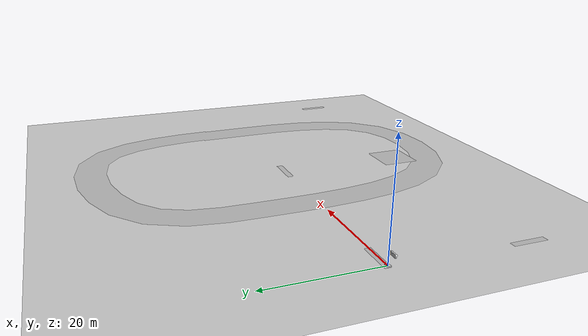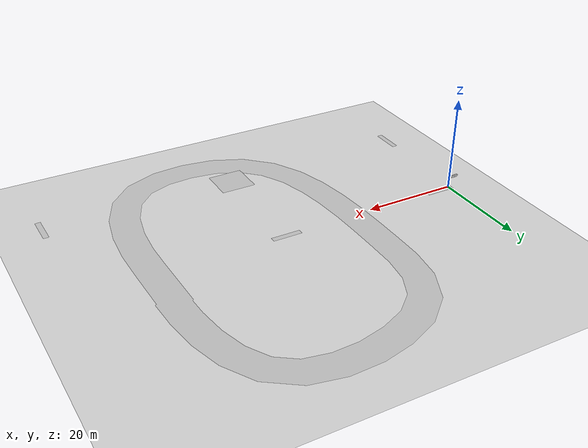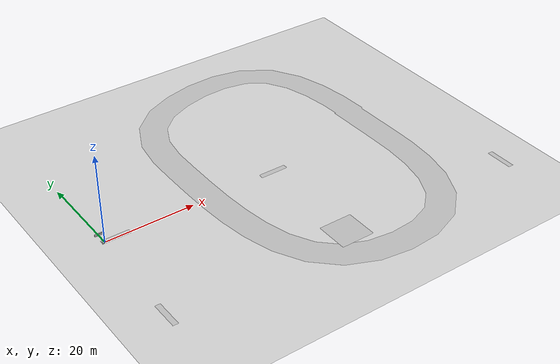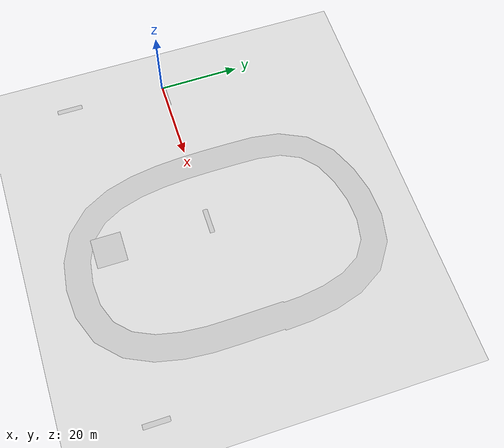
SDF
<sdf version="1.7">
 <world name="default">
  <light name="sun" type="directional">
   <pose>0 0 10 0 -0 0</pose>
   <diffuse>0.8 0.8 0.8 1</diffuse>
   <specular>0.2 0.2 0.2 1</specular>
   <attenuation>
    <range>1000</range>
    <constant>0.9</constant>
    <linear>0.01</linear>
    <quadratic>0.001</quadratic>
   </attenuation>
   <direction>-0.5 0.1 -0.9</direction>
   <spot><inner_angle>0</inner_angle><outer_angle>0</outer_angle><falloff>0</falloff></spot>
  </light>
  <model name="ground_plane">
   <static>1</static>
   <link name="link">
    <collision name="collision">
     <geometry><plane><normal>0 0 1</normal><size>100 100</size></plane></geometry>
     <surface><friction><ode><mu>100</mu><mu2>50</mu2></ode></friction></surface>
    </collision>
    <visual name="visual">
     <cast_shadows>0</cast_shadows>
     <geometry><plane><normal>0 0 1</normal><size>100 100</size></plane></geometry>
     <material>
      <script><uri>file://media/materials/scripts/gazebo.material</uri><name>Gazebo/Grey</name></script>
     </material>
    </visual>
   </link>
  </model>
  <gravity>0 0 -9.8</gravity>
  <magnetic_field>6e-06 2.3e-05 -4.2e-05</magnetic_field>
  <atmosphere type="adiabatic"/>
  <physics type="ode">
   <max_step_size>0.001</max_step_size>
   <real_time_factor>1</real_time_factor>
   <real_time_update_rate>1000</real_time_update_rate>
  </physics>
  <scene><ambient>0.4 0.4 0.4 1</ambient><background>0.7 0.7 0.7 1</background><shadows>1</shadows></scene>
  <spherical_coordinates>
   <surface_model>EARTH_WGS84</surface_model>
   <latitude_deg>0</latitude_deg>
   <longitude_deg>0</longitude_deg>
   <elevation>0</elevation>
   <heading_deg>0</heading_deg>
  </spherical_coordinates>
  <model name="self_driving_track">
   <link name="link_0">
    <pose>-0.03442 0.020057 0 0 -0 0</pose>
    <visual name="visual">
     <geometry>
      <mesh>
       <uri>/home/luqman/test_blender_models/track/materials/meshes/complete_circuit.dae</uri>
       <scale>1 1 1</scale>
      </mesh>
     </geometry>
     <material>
      <script>
       <uri>/home/luqman/test_blender_models/track/materials/script_road/</uri>
       <uri>/home/luqman/test_blender_models/track/materials/textures</uri>
       <name>road/Diffuse</name>
      </script>
     </material>
    </visual>
    <collision name="collision">
     <geometry>
      <mesh>
       <uri>/home/luqman/test_blender_models/track/materials/meshes/complete_circuit.dae</uri>
       <scale>1 1 1</scale>
      </mesh>
     </geometry>
     <surface>
      <friction>
       <ode><mu>1</mu><mu2>1</mu2><fdir1>0 0 0</fdir1><slip1>0</slip1><slip2>0</slip2></ode>
       <torsional>
        <coefficient>1</coefficient>
        <patch_radius>0</patch_radius>
        <surface_radius>0</surface_radius>
        <use_patch_radius>1</use_patch_radius>
        <ode><slip>0</slip></ode>
       </torsional>
      </friction>
      <bounce><restitution_coefficient>0</restitution_coefficient><threshold>1e+06</threshold></bounce>
      <contact>
       <collide_without_contact>0</collide_without_contact>
       <collide_without_contact_bitmask>1</collide_without_contact_bitmask>
       <collide_bitmask>1</collide_bitmask>
       <ode>
        <soft_cfm>0</soft_cfm>
        <soft_erp>0.2</soft_erp>
        <kp>1e+13</kp>
        <kd>1</kd>
        <max_vel>0.01</max_vel>
        <min_depth>0</min_depth>
       </ode>
       <bullet>
        <split_impulse>1</split_impulse>
        <split_impulse_penetration_threshold>-0.01</split_impulse_penetration_threshold>
        <soft_cfm>0</soft_cfm>
        <soft_erp>0.2</soft_erp>
        <kp>1e+13</kp>
        <kd>1</kd>
       </bullet>
      </contact>
     </surface>
    </collision>
   </link>
   <link name="link_1">
    <pose>0.034415 -0.020057 0 0 -0 0</pose>
    <visual name="visual">
     <geometry>
      <mesh><uri>/home/luqman/test_blender_models/track/materials/meshes/chowk.dae</uri><scale>1 1 1</scale></mesh>
     </geometry>
     <material>
      <script>
       <uri>/home/luqman/test_blender_models/track/materials/script_chowk/</uri>
       <uri>/home/luqman/test_blender_models/track/materials/textures</uri>
       <name>chowk/Diffuse</name>
      </script>
     </material>
    </visual>
    <collision name="collision">
     <geometry>
      <mesh><uri>/home/luqman/test_blender_models/track/materials/meshes/chowk.dae</uri><scale>1 1 1</scale></mesh>
     </geometry>
     <surface>
      <friction>
       <ode><mu>1</mu><mu2>1</mu2><fdir1>0 0 0</fdir1><slip1>0</slip1><slip2>0</slip2></ode>
       <torsional>
        <coefficient>1</coefficient>
        <patch_radius>0</patch_radius>
        <surface_radius>0</surface_radius>
        <use_patch_radius>1</use_patch_radius>
        <ode><slip>0</slip></ode>
       </torsional>
      </friction>
      <bounce><restitution_coefficient>0</restitution_coefficient><threshold>1e+06</threshold></bounce>
      <contact>
       <collide_without_contact>0</collide_without_contact>
       <collide_without_contact_bitmask>1</collide_without_contact_bitmask>
       <collide_bitmask>1</collide_bitmask>
       <ode>
        <soft_cfm>0</soft_cfm>
        <soft_erp>0.2</soft_erp>
        <kp>1e+13</kp>
        <kd>1</kd>
        <max_vel>0.01</max_vel>
        <min_depth>0</min_depth>
       </ode>
       <bullet>
        <split_impulse>1</split_impulse>
        <split_impulse_penetration_threshold>-0.01</split_impulse_penetration_threshold>
        <soft_cfm>0</soft_cfm>
        <soft_erp>0.2</soft_erp>
        <kp>1e+13</kp>
        <kd>1</kd>
       </bullet>
      </contact>
     </surface>
    </collision>
   </link>
   <static>1</static>
   <pose>-11.12 3.75946 0 0 -0 0</pose>
  </model>
  <model name="taffic_stand">
   <static>1</static>
   <link name="traffic_stand_link">
    <visual name="visual">
     <geometry>
      <mesh><uri>/home/luqman/test_blender_models/lights_2/materials/meshes/traffic_light.dae</uri></mesh>
     </geometry>
    </visual>
    <collision name="collision">
     <geometry>
      <mesh><uri>/home/luqman/test_blender_models/lights_2/materials/meshes/traffic_light.dae</uri></mesh>
     </geometry>
    </collision>
   </link>
   <pose>0.007178 0.014972 0 0 -0 0</pose>
  </model>
 </world>
</sdf>
